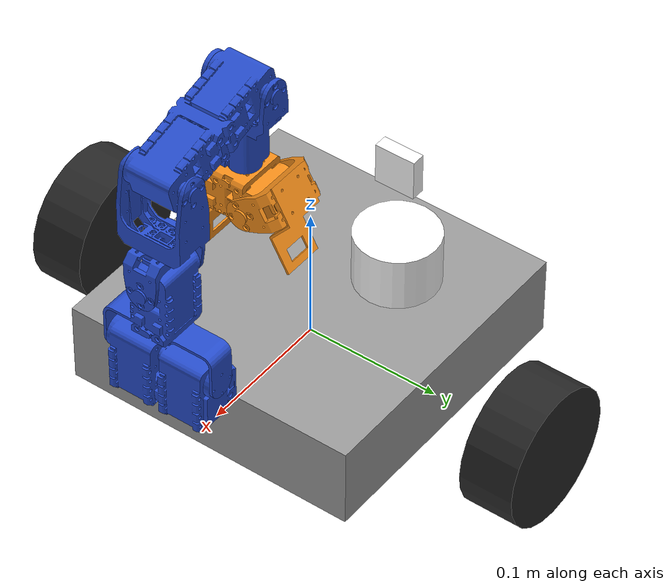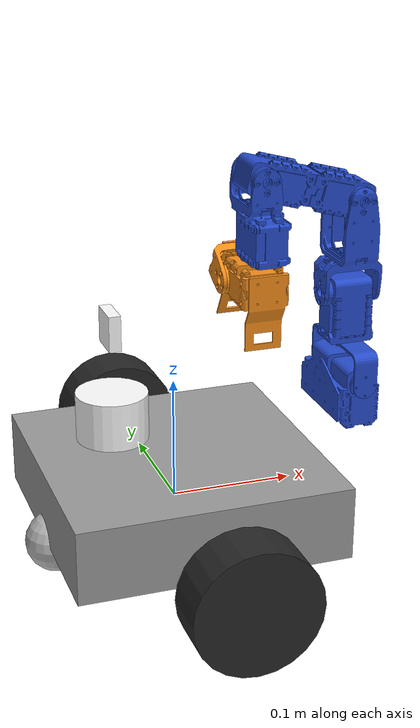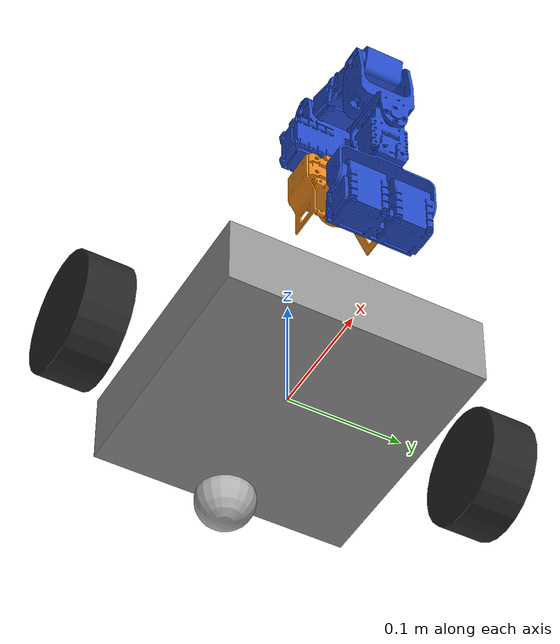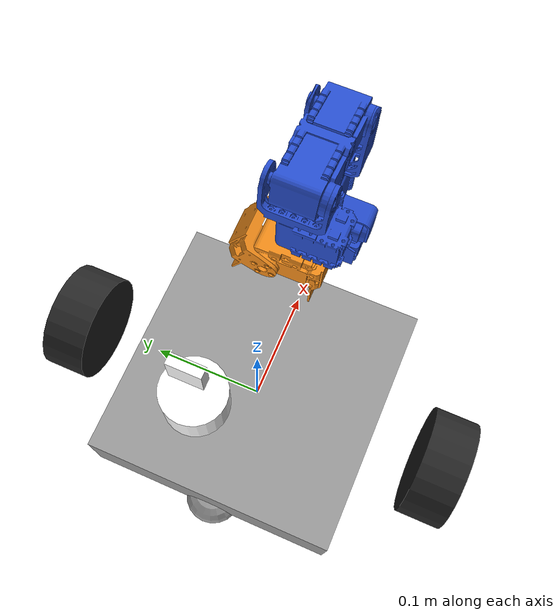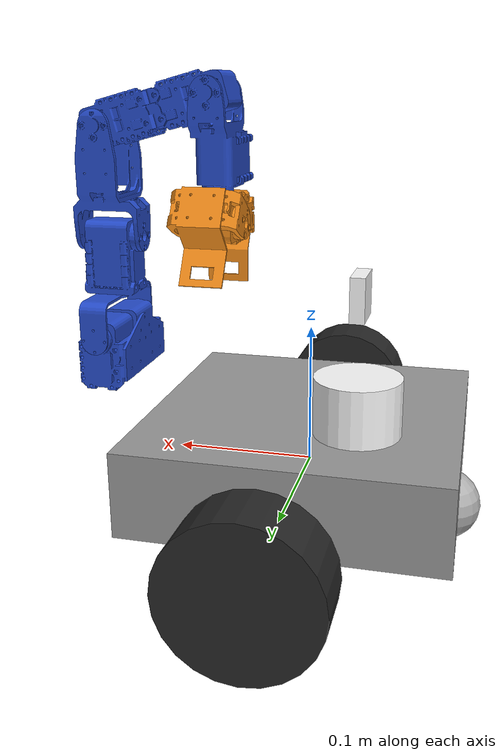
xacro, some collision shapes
<?xml version="1.0"?>
<robot xmlns:xacro="http://www.ros.org/wiki/xacro" name="omni_robot">
    <xacro:arg name="initial_positions_file" default="initial_positions.yaml" />

    <!-- Import omni_robot urdf file -->
    <xacro:include filename="$(find robot_description)/robot/omni_robot.xacro" />

    <!-- Import control_xacro -->
    <xacro:include filename="omni_robot.ros2_control.xacro" />

    <xacro:omni_robot_ros2_control name="FakeSystem" initial_positions_file="$(arg initial_positions_file)"/>

</robot>

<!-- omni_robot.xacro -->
<robot name="omni_robot" xmlns:xacro="http://ros.org/wiki/xacro">

  <xacro:include filename="$(find robot_description)/urdf/inertial_macros.xacro"/>
  <xacro:include filename="$(find robot_description)/urdf/base/base.urdf.xacro"/>
  <xacro:include filename="$(find robot_description)/urdf/wheels/diff_wheels.xacro"/>
  <xacro:include filename="$(find robot_description)/urdf/lidar/lidar.urdf.xacro"/>
  <xacro:include filename="$(find robot_description)/urdf/camera/camera.urdf.xacro"/>
  <xacro:include filename="$(find robot_description)/urdf/ros2_control.xacro"/>
  <xacro:include filename="$(find robot_description)/urdf/shoulder/shoulder.xacro"/>
  <xacro:include filename="$(find robot_description)/urdf/upper_arm/upper_arm.xacro"/>
  <xacro:include filename="$(find robot_description)/urdf/elbow/elbow.xacro"/>
  <xacro:include filename="$(find robot_description)/urdf/lower_arm/lower_arm.xacro"/>
  <xacro:include filename="$(find robot_description)/urdf/wrist/wrist.xacro"/>
  <xacro:include filename="$(find robot_description)/urdf/gripper/gripper.xacro"/>
  <xacro:include filename="$(find robot_description)/urdf/finger/finger.xacro"/>
  <xacro:property name="PI" value="3.14159274"/>

  <!-- =============== Links & Joints =============== -->

  <link name="base_footprint"/>
  <xacro:base_v0 parent="base_footprint">
    <origin xyz="0 0 0" rpy="0 0 0"/>
  </xacro:base_v0>

  <!-- Differential drive wheels + caster -->
  <xacro:diff_wheels_v0/>

  <!-- LiDAR — rear-center, above base -->
  <xacro:lidar_v0 parent="base_link">
    <origin xyz="-0.04 0.04 0.06" rpy="0 0 0"/>
  </xacro:lidar_v0>

  <!-- RGBD Camera — above LiDAR, facing backward (away from arm) -->
  <xacro:camera_v0 parent="base_link">
    <origin xyz="-0.04 0.04 0.135" rpy="0 0 3.14159"/>
  </xacro:camera_v0>

  <!-- Arm -->
  <xacro:shoulder parent="base_link">
    <origin xyz="0.126 0 0.092" rpy="0 ${PI/2} 0"/>
    <axis xyz="0 0 1"/>
  </xacro:shoulder>

  <xacro:upper_arm parent="shoulder_link">
    <origin xyz="0.0 0.0 0.021" rpy="0 -${PI/2} 0"/>
    <axis xyz="0 1 0"/>
  </xacro:upper_arm>

  <xacro:elbow parent="upper_arm_link">
    <origin xyz="0.0 0.0 0.0685" rpy="0 0 0"/>
    <axis xyz="1 0 0"/>
  </xacro:elbow>

  <xacro:lower_arm parent="elbow_link">
    <origin xyz="0.0 0.0 0.078" rpy="0 -${5*PI/12} 0"/>
    <axis xyz="0 1 0"/>
  </xacro:lower_arm>

  <xacro:wrist parent="lower_arm_link">
    <origin xyz="0.0 0.0 0.083" rpy="0 -${7*PI/12} 0"/>
    <axis xyz="0 1 0"/>
  </xacro:wrist>

  <xacro:gripper parent="wrist_link">
    <origin xyz="0.0 0.0 0.122" rpy="0 0 0"/>
    <axis xyz="0 0 1"/>
  </xacro:gripper>

  <xacro:finger parent="gripper_link">
    <origin xyz="0.0 0.01475 -0.037" rpy="${-PI/6} 0 0"/>
    <axis xyz="1 0 0"/>
  </xacro:finger>

</robot>

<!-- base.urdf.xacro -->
<robot xmlns:xacro="http://ros.org/wiki/xacro">

  <xacro:macro name="base_v0" params="parent *joint_origin">
	  <joint name="base_link_joint" type="fixed">
	    <xacro:insert_block name="joint_origin"/>
	    <parent link="${parent}"/>
	    <child link="base_link"/>
	  </joint>

	<link name="base_link">
	  <visual>
		  <geometry>
		    <mesh filename="package://robot_description/meshes/STL/base/base_link.stl"/>
		  </geometry>
	  </visual>
	  <collision>
		  <geometry>
		    <box size="0.22 0.22 0.06"/>
		  </geometry>
		  <origin xyz="0 0 0.01" rpy="0 0 0"/>
	  </collision>
	  <inertial>
		  <origin xyz="0 0 0"/>
		  <mass value="1.167"/>
		<inertia ixx="0.0016" ixy="0" ixz="0" iyy="0.0016" iyz="0" izz="0.0032" />
	  </inertial>
          <surface>
            <friction>
              <ode>
                <mu>0.8</mu>
                <mu2>0.8</mu2>
                <kp>1e15</kp>
                <kd>1e13</kd>
              </ode>
            </friction>
            <bounce>
              <restitution_coefficient>0.01</restitution_coefficient>
              <threshold>10</threshold>
            </bounce>
            <contact>
              <ode>
                <max_vel>0.01</max_vel>
                <minDepth>0</minDepth>
                <contact_surface_layer>0</contact_surface_layer>
              </ode>
            </contact>
          </surface>
	</link>
  </xacro:macro>

</robot>

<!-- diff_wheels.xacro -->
<robot xmlns:xacro="http://ros.org/wiki/xacro">

  <!-- Differential drive wheels + caster + Gazebo diff_drive plugin -->
  <xacro:macro name="diff_wheels_v0">

    <!-- Left drive wheel -->
    <joint name="left_wheel_joint" type="continuous">
      <parent link="base_link"/>
      <child link="left_wheel_link"/>
      <origin xyz="0.0 0.175 0.0" rpy="-1.5707963 0 0"/>
      <axis xyz="0 0 1"/>
    </joint>
    <link name="left_wheel_link">
      <visual>
        <geometry><cylinder radius="0.05" length="0.04"/></geometry>
        <material name="wheel_dark"><color rgba="0.15 0.15 0.15 1.0"/></material>
      </visual>
      <collision>
        <geometry><cylinder radius="0.05" length="0.04"/></geometry>
      </collision>
      <xacro:inertial_cylinder mass="0.2" length="0.04" radius="0.05">
        <origin xyz="0 0 0" rpy="0 0 0"/>
      </xacro:inertial_cylinder>
    </link>

    <!-- Right drive wheel -->
    <joint name="right_wheel_joint" type="continuous">
      <parent link="base_link"/>
      <child link="right_wheel_link"/>
      <origin xyz="0.0 -0.175 0.0" rpy="-1.5707963 0 0"/>
      <axis xyz="0 0 1"/>
    </joint>
    <link name="right_wheel_link">
      <visual>
        <geometry><cylinder radius="0.05" length="0.04"/></geometry>
        <material name="wheel_dark"><color rgba="0.15 0.15 0.15 1.0"/></material>
      </visual>
      <collision>
        <geometry><cylinder radius="0.05" length="0.04"/></geometry>
      </collision>
      <xacro:inertial_cylinder mass="0.2" length="0.04" radius="0.05">
        <origin xyz="0 0 0" rpy="0 0 0"/>
      </xacro:inertial_cylinder>
    </link>

    <!-- Rear caster wheel (arm is at the front, caster at back) -->
    <joint name="caster_wheel_joint" type="fixed">
      <parent link="base_link"/>
      <child link="caster_wheel_link"/>
      <origin xyz="-0.1 0.0 -0.025" rpy="0 0 0"/>
    </joint>
    <link name="caster_wheel_link">
      <visual>
        <geometry><sphere radius="0.025"/></geometry>
        <material name="caster_grey"><color rgba="0.7 0.7 0.7 1.0"/></material>
      </visual>
      <collision>
        <geometry><sphere radius="0.025"/></geometry>
      </collision>
      <inertial>
        <mass value="0.05"/>
        <inertia ixx="0.000013" ixy="0" ixz="0"
                 iyy="0.000013" iyz="0"
                 izz="0.000013"/>
      </inertial>
    </link>

    <!-- Wheel friction properties -->
    <gazebo reference="left_wheel_link">
      <material>Gazebo/DarkGrey</material>
      <mu1>1.0</mu1>
      <mu2>1.0</mu2>
    </gazebo>
    <gazebo reference="right_wheel_link">
      <material>Gazebo/DarkGrey</material>
      <mu1>1.0</mu1>
      <mu2>1.0</mu2>
    </gazebo>
    <!-- Caster is frictionless so it swivels freely -->
    <gazebo reference="caster_wheel_link">
      <material>Gazebo/Grey</material>
      <mu1>0.001</mu1>
      <mu2>0.001</mu2>
    </gazebo>

    <!-- Differential drive Gazebo plugin -->
    <gazebo>
      <plugin name="diff_drive" filename="libgazebo_ros_diff_drive.so">
        <ros>
          <remapping>cmd_vel:=cmd_vel_out</remapping>
          <remapping>odom:=odom</remapping>
        </ros>
        <left_joint>left_wheel_joint</left_joint>
        <right_joint>right_wheel_joint</right_joint>
        <wheel_separation>0.35</wheel_separation>
        <wheel_diameter>0.1</wheel_diameter>
        <max_wheel_torque>200</max_wheel_torque>
        <max_wheel_acceleration>10.0</max_wheel_acceleration>
        <publish_odom>true</publish_odom>
        <publish_odom_tf>true</publish_odom_tf>
        <publish_wheel_tf>false</publish_wheel_tf>
        <odometry_frame>odom</odometry_frame>
        <robot_base_frame>base_footprint</robot_base_frame>
      </plugin>
    </gazebo>

  </xacro:macro>

</robot>

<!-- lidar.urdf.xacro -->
<robot xmlns:xacro="http://www.ros.org/wiki/xacro">

  <xacro:macro name="lidar_v0" params="parent *joint_origin">

    <joint name="laser_joint" type="fixed">
      <xacro:insert_block name="joint_origin"/>
      <parent link="${parent}"/>
      <child link="laser_frame"/>
    </joint>

    <link name="laser_frame">
      <visual>
        <geometry>
          <cylinder radius="0.03" length="0.04"/>
        </geometry>
        <material name="white">
          <color rgba="1.0 1.0 1.0 1.0"/>
        </material>
      </visual>
      <collision>
        <geometry>
          <cylinder radius="0.03" length="0.04"/>
        </geometry>
      </collision>
      <xacro:inertial_cylinder mass="0.1" length="0.04" radius="0.03">
        <origin xyz="0 0 0" rpy="0 0 0"/>
      </xacro:inertial_cylinder>
    </link>

    <gazebo reference="laser_frame">
      <material>Gazebo/White</material>
      <sensor name="laser" type="ray">
        <pose>0 0 0 0 0 0</pose>
        <visualize>true</visualize>
        <update_rate>10</update_rate>
        <ray>
          <scan>
            <horizontal>
              <samples>360</samples>
              <min_angle>-3.14</min_angle>
              <max_angle>3.14</max_angle>
            </horizontal>
          </scan>
          <range>
            <min>0.3</min>
            <max>12</max>
          </range>
        </ray>
        <plugin name="laser_controller" filename="libgazebo_ros_ray_sensor.so">
          <ros>
            <remapping>~/out:=scan</remapping>
          </ros>
          <output_type>sensor_msgs/LaserScan</output_type>
          <frame_name>laser_frame</frame_name>
        </plugin>
      </sensor>
    </gazebo>

  </xacro:macro>

</robot>

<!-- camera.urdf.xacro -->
<robot xmlns:xacro="http://www.ros.org/wiki/xacro">

  <xacro:macro name="camera_v0" params="parent *joint_origin">

    <joint name="camera_joint" type="fixed">
      <xacro:insert_block name="joint_origin"/>
      <parent link="${parent}"/>
      <child link="camera_link"/>
    </joint>

    <link name="camera_link">
      <visual>
        <geometry>
          <box size="0.010 0.03 0.03"/>
        </geometry>
        <material name="white">
          <color rgba="1.0 1.0 1.0 1.0"/>
        </material>
      </visual>
    </link>

    <joint name="camera_optical_joint" type="fixed">
      <origin xyz="0 0 0" rpy="${-pi/2} 0 ${-pi/2}"/>
      <parent link="camera_link"/>
      <child link="camera_optical_link"/>
    </joint>
    <link name="camera_optical_link"/>

    <gazebo reference="camera_link">
      <material>Gazebo/White</material>
      <sensor name="camera" type="depth">
        <pose>0 0 0 0 0 0</pose>
        <visualize>true</visualize>
        <update_rate>10</update_rate>
        <camera>
          <horizontal_fov>1.089</horizontal_fov>
          <image>
            <format>B8G8R8</format>
            <width>640</width>
            <height>480</height>
          </image>
          <clip>
            <near>0.05</near>
            <far>8.0</far>
          </clip>
        </camera>
        <plugin name="camera_controller" filename="libgazebo_ros_camera.so">
          <camera_name>rgbd_camera</camera_name>
          <frame_name>camera_optical_link</frame_name>
          <min_depth>0.05</min_depth>
          <max_depth>8.0</max_depth>
        </plugin>
      </sensor>
    </gazebo>

  </xacro:macro>

</robot>

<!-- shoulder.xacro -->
<robot xmlns:xacro="http://ros.org/wiki/xacro">

  <xacro:macro name="shoulder" params="parent *joint_origin *joint_axis">
	<joint name="soulder_joint" type="revolute">
	  <xacro:insert_block name="joint_origin"/>
	  <parent link="${parent}"/>
	  <child link="shoulder_link"/>
          <limit effort="100" velocity="100" lower="-3.14" upper = "3.14"/>
          <dynamics damping="10.0" friction="1.0"/>
	  <xacro:insert_block name="joint_axis"/>
	</joint>

	<link name="shoulder_link">
	  <visual>
		  <geometry>
		    <mesh filename="package://robot_description/meshes/STL/shoulder/shoulder.stl"/>
		  </geometry>
	  </visual>
	  <collision>
		  <geometry>
		    <mesh filename="package://robot_description/meshes/STL/shoulder/shoulder.stl"/>
		  </geometry>
	  </collision>
	  <inertial>
		<origin xyz="0.0000223482 0.0000414609 0.0066287000"/>
		<mass value="0.480879"/>
		<inertia ixx="0.000222" ixy="0" ixz="0" iyy="0.000395" iyz="0" izz="0.000222"/>
	  </inertial>
          <surface>
            <friction>
              <ode>
                <mu1>1.2</mu1>
                <mu2>1.2</mu2>
                <kp>1e15</kp>
                <kd>1e13</kd>
              </ode>
            </friction>
            <bounce>
              <restitution_coefficient>0.01</restitution_coefficient>
              <threshold>0</threshold>
            </bounce>
            <contact>
              <ode>
                <max_vel>10</max_vel>
              </ode>
            </contact>
          </surface>
	</link>
  </xacro:macro>

</robot>

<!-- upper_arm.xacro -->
<robot xmlns:xacro="http://ros.org/wiki/xacro">

  <xacro:macro name="upper_arm" params="parent *joint_origin *joint_axis">
	<joint name="upper_arm_joint" type="revolute">
	  <xacro:insert_block name="joint_origin"/>
	  <parent link="${parent}"/>
	  <child link="upper_arm_link"/>
          <limit effort="100" velocity="100" lower="-3.14" upper = "3.14"/>
          <dynamics damping="10.0" friction="1.0"/>
	  <xacro:insert_block name="joint_axis"/>
	</joint>

	<link name="upper_arm_link">
	  <visual>
		  <geometry>
		    <mesh filename="package://robot_description/meshes/STL/upper_arm/upper_arm.stl"/>
		  </geometry>
	  </visual>
	  <collision>
		  <geometry>
		    <mesh filename="package://robot_description/meshes/STL/upper_arm/upper_arm.stl"/>
		  </geometry>
	  </collision>
	  <inertial>
		<origin xyz="0.0 0.0 0.0"/>
		<mass value="0.298"/>
		<inertia ixx="0.002176" ixy="-0.0000030658" ixz="0.0" iyy="0.00005757" iyz="0.0" izz="0.002186"/>
	  </inertial>
          <surface>
            <friction>
              <ode>
                <mu1>1.2</mu1>
                <mu2>1.2</mu2>
                <kp>1e15</kp>
                <kd>1e13</kd>
              </ode>
            </friction>
            <bounce>
              <restitution_coefficient>0.01</restitution_coefficient>
              <threshold>0</threshold>
            </bounce>
            <contact>
              <ode>
                <max_vel>10</max_vel>
              </ode>
            </contact>
          </surface>
	</link>
  </xacro:macro>

</robot>

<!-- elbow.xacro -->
<robot xmlns:xacro="http://ros.org/wiki/xacro">

  <xacro:macro name="elbow" params="parent *joint_origin *joint_axis">
	<joint name="elbow_joint" type="revolute">
	  <xacro:insert_block name="joint_origin"/>
	  <parent link="${parent}"/>
	  <child link="elbow_link"/>
          <limit effort="100" velocity="100" lower="-3.14" upper = "3.14"/>
          <dynamics damping="10.0" friction="1.0"/>
	  <xacro:insert_block name="joint_axis"/>
	</joint>

	<link name="elbow_link">
	  <visual>
		  <geometry>
		    <mesh filename="package://robot_description/meshes/STL/elbow/elbow.stl"/>
		  </geometry>
	  </visual>
	  <collision>
		  <geometry>
		    <mesh filename="package://robot_description/meshes/STL/elbow/elbow.stl"/>
		  </geometry>
	  </collision>
	  <inertial>
		<origin xyz="0.1079630000 0.0001158760 0"/>
		<mass value="0.234589"/>
		<inertia ixx="0.00003971" ixy="0.0000023528" ixz="0.0" iyy="0.0008878" iyz="0.0" izz="0.000888"/>
	  </inertial>
          <surface>
            <friction>
              <ode>
                <mu1>1.2</mu1>
                <mu2>1.2</mu2>
                <kp>1e15</kp>
                <kd>1e13</kd>
              </ode>
            </friction>
            <bounce>
              <restitution_coefficient>0.01</restitution_coefficient>
              <threshold>0</threshold>
            </bounce>
            <contact>
              <ode>
                <max_vel>10</max_vel>
              </ode>
            </contact>
          </surface>
	</link>
  </xacro:macro>

</robot>

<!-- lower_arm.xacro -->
<robot xmlns:xacro="http://ros.org/wiki/xacro">

  <xacro:macro name="lower_arm" params="parent *joint_origin *joint_axis">
	<joint name="lower_arm_joint" type="revolute">
	  <xacro:insert_block name="joint_origin"/>
	  <parent link="${parent}"/>
	  <child link="lower_arm_link"/>
          <limit effort="100" velocity="100" lower="-3.14" upper = "3.14"/>
          <dynamics damping="10.0" friction="1.0"/>
	  <xacro:insert_block name="joint_axis"/>
	</joint>

	<link name="lower_arm_link">
	  <visual>
		  <geometry>
		    <mesh filename="package://robot_description/meshes/STL/lower_arm/lower_arm.stl"/>
		  </geometry>
	  </visual>
	  <collision>
		  <geometry>
		    <mesh filename="package://robot_description/meshes/STL/lower_arm/lower_arm.stl"/>
		  </geometry>
	  </collision>
	  <inertial>
		<origin xyz="0.0374395000 0.0052225200 0"/>
		<mass value="0.220991"/>
		<inertia ixx="0.00006369" ixy="-0.00002292" ixz="0.0" iyy="0.0001677" iyz="0.0" izz="0.0001834"/>
	  </inertial>
          <surface>
            <friction>
              <ode>
                <mu1>1.2</mu1>
                <mu2>1.2</mu2>
                <kp>1e15</kp>
                <kd>1e13</kd>
              </ode>
            </friction>
            <bounce>
              <restitution_coefficient>0.01</restitution_coefficient>
              <threshold>0</threshold>
            </bounce>
            <contact>
              <ode>
                <max_vel>10</max_vel>
              </ode>
            </contact>
          </surface>
	</link>
  </xacro:macro>

</robot>

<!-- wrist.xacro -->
<robot xmlns:xacro="http://ros.org/wiki/xacro">

  <xacro:macro name="wrist" params="parent *joint_origin *joint_axis">
	<joint name="wrist_joint" type="revolute">
	  <xacro:insert_block name="joint_origin"/>
	  <parent link="${parent}"/>
	  <child link="wrist_link"/>
          <limit effort="100" velocity="100" lower="-3.14" upper = "3.14"/>
          <dynamics damping="10.0" friction="1.0"/>
	  <xacro:insert_block name="joint_axis"/>
	</joint>

	<link name="wrist_link">
	  <visual>
		  <geometry>
		    <mesh filename="package://robot_description/meshes/STL/wrist/wrist.stl"/>
		  </geometry>
	  </visual>
	  <collision>
		  <geometry>
		    <mesh filename="package://robot_description/meshes/STL/wrist/wrist.stl"/>
		  </geometry>
	  </collision>
	  <inertial>
		<origin xyz="0.0 0.0 0.0"/>
		<mass value="0.085"/>
		<inertia ixx="0.00003082" ixy="0.0000000191" ixz="0.0000000023" iyy="0.00002822" iyz="0.0000025481" izz="0.00003152"/>
	  </inertial>
          <surface>
            <friction>
              <ode>
                <mu1>1.2</mu1>
                <mu2>1.2</mu2>
                <kp>1e15</kp>
                <kd>1e13</kd>
              </ode>
            </friction>
            <bounce>
              <restitution_coefficient>0.01</restitution_coefficient>
              <threshold>0</threshold>
            </bounce>
            <contact>
              <ode>
                <max_vel>10</max_vel>
              </ode>
            </contact>
          </surface>
	</link>
  </xacro:macro>

</robot>

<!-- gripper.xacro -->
<robot xmlns:xacro="http://ros.org/wiki/xacro">

  <xacro:macro name="gripper" params="parent *joint_origin *joint_axis">
	<joint name="gripper_joint" type="revolute">
	  <xacro:insert_block name="joint_origin"/>
	  <parent link="${parent}"/>
	  <child link="gripper_link"/>
          <limit effort="100" velocity="100" lower="-3.14" upper = "3.14"/>
          <dynamics damping="10.0" friction="1.0"/>
	  <xacro:insert_block name="joint_axis"/>
	</joint>

	<link name="gripper_link">
	  <visual>
		  <geometry>
		    <mesh filename="package://robot_description/meshes/STL/gripper/gripper.stl"/>
		  </geometry>
	  </visual>
	  <collision>
		  <geometry>
		    <mesh filename="package://robot_description/meshes/STL/gripper/gripper.stl"/>
		  </geometry>
	  </collision>
	  <inertial>
		<origin xyz="0.0 0.0 0.0"/>
		<mass value="0.25"/>
		<inertia ixx="0.00002537" ixy="0.0" ixz="0.0" iyy="0.00001836" iyz="0.000000434" izz="0.00001674"/>
	  </inertial>
          <surface>
            <friction>
              <ode>
                <mu1>1.2</mu1>
                <mu2>1.2</mu2>
                <kp>1e15</kp>
                <kd>1e13</kd>
              </ode>
            </friction>
            <bounce>
              <restitution_coefficient>0.01</restitution_coefficient>
              <threshold>0</threshold>
            </bounce>
            <contact>
              <ode>
                <max_vel>10</max_vel>
              </ode>
            </contact>
          </surface>
	</link>
  </xacro:macro>

</robot>

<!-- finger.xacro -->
<robot xmlns:xacro="http://ros.org/wiki/xacro">

  <xacro:macro name="finger" params=" parent *joint_origin *joint_axis">
	<joint name="finger_joint" type="revolute">
	  <xacro:insert_block name="joint_origin"/>
	  <parent link="${parent}"/>
	  <child link="finger_link"/>
          <limit effort="100" velocity="100" lower="-1.57" upper = "1.57"/>
          <dynamics damping="5.0" friction="0.5"/>
	  <xacro:insert_block name="joint_axis"/>
	</joint>

	<link name="finger_link">
	  <visual>
		  <geometry>
		    <mesh filename="package://robot_description/meshes/STL/finger/finger.stl"/>
		  </geometry>
	  </visual>
	  <collision>
		  <geometry>
		    <mesh filename="package://robot_description/meshes/STL/finger/finger.stl"/>
		  </geometry>
	  </collision>
	  <inertial>
		<origin xyz="0.0 0.0 0.0"/>
		<mass value="0.016"/>
		<inertia ixx="0.000004731" ixy="-0.000000456" ixz="0.0" iyy="0.000003500" iyz="0.0" izz="0.000003747"/>
	  </inertial>
          <surface>
            <friction>
              <ode>
                <mu1>1.2</mu1>
                <mu2>1.2</mu2>
                <kp>1e15</kp>
                <kd>1e13</kd>
              </ode>
            </friction>
            <bounce>
              <restitution_coefficient>0.01</restitution_coefficient>
              <threshold>0</threshold>
            </bounce>
            <contact>
              <ode>
                <max_vel>10</max_vel>
              </ode>
            </contact>
          </surface>
	</link>
  </xacro:macro>

</robot>
